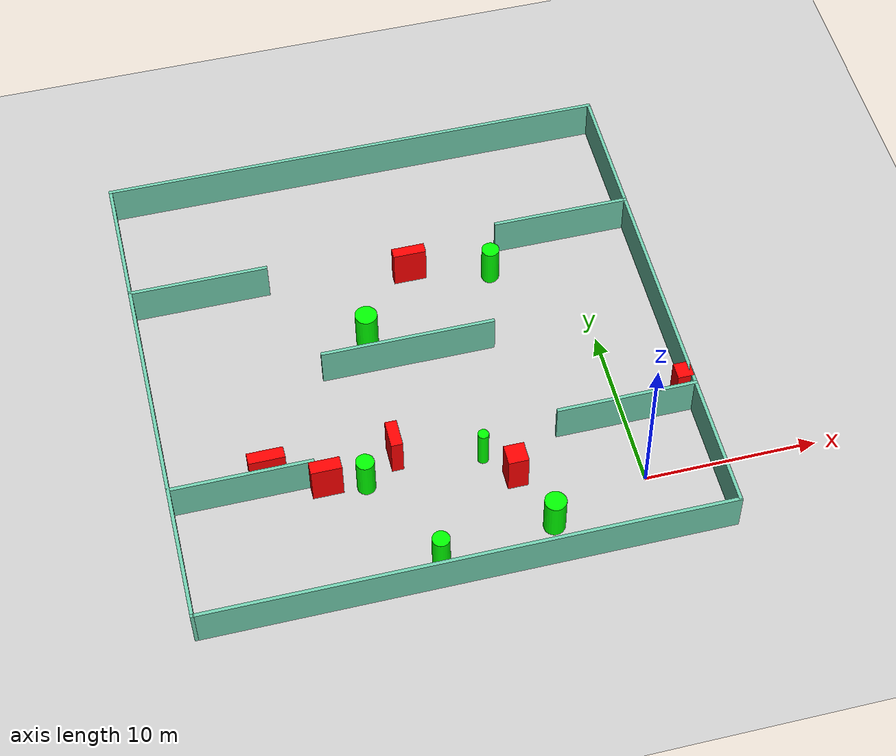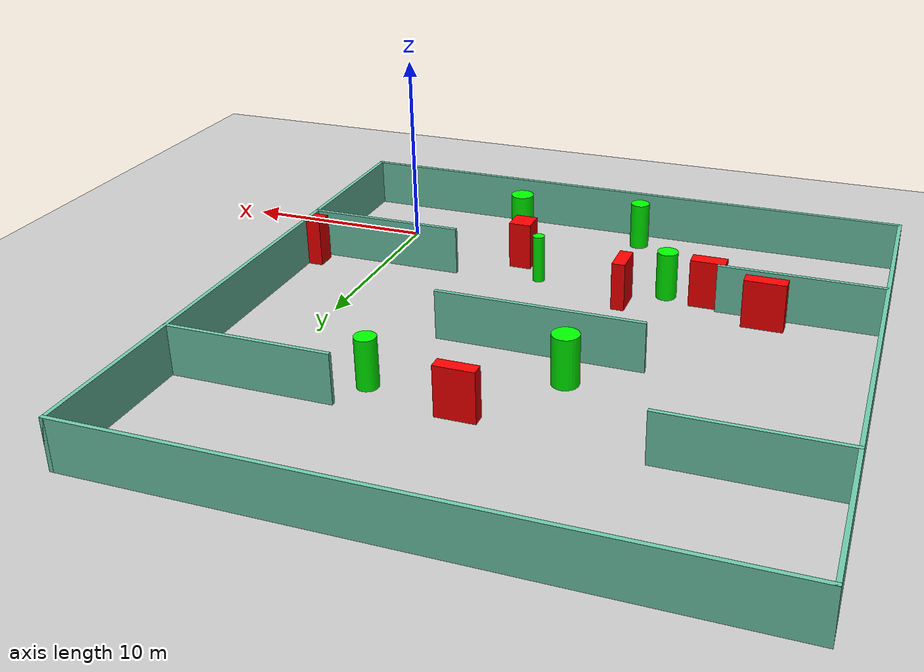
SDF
<sdf version="1.7">
 <world name="default">
  <light name="sun" type="directional">
   <pose>0 0 10 0 -0 0</pose>
   <diffuse>0.8 0.8 0.8 1</diffuse>
   <specular>0.2 0.2 0.2 1</specular>
   <attenuation>
    <range>1000</range>
    <constant>0.9</constant>
    <linear>0.01</linear>
    <quadratic>0.001</quadratic>
   </attenuation>
   <direction>-0.5 0.1 -0.9</direction>
   <spot><inner_angle>0</inner_angle><outer_angle>0</outer_angle><falloff>0</falloff></spot>
  </light>
  <model name="ground_plane">
   <static>1</static>
   <link name="link">
    <collision name="collision">
     <geometry><plane><normal>0 0 1</normal><size>100 100</size></plane></geometry>
     <surface>
      <contact><collide_bitmask>65535</collide_bitmask></contact>
      <friction><ode><mu>100</mu><mu2>50</mu2></ode></friction>
     </surface>
    </collision>
    <visual name="visual">
     <cast_shadows>0</cast_shadows>
     <geometry><plane><normal>0 0 1</normal><size>100 100</size></plane></geometry>
     <material>
      <script><uri>file://media/materials/scripts/gazebo.material</uri><name>Gazebo/Grey</name></script>
     </material>
    </visual>
   </link>
  </model>
  <gravity>0 0 -9.8</gravity>
  <magnetic_field>6e-06 2.3e-05 -4.2e-05</magnetic_field>
  <atmosphere type="adiabatic"/>
  <physics type="ode">
   <max_step_size>0.001</max_step_size>
   <real_time_factor>1</real_time_factor>
   <real_time_update_rate>1000</real_time_update_rate>
  </physics>
  <scene><ambient>0.4 0.4 0.4 1</ambient><background>0.7 0.7 0.7 1</background><shadows>1</shadows></scene>
  <spherical_coordinates>
   <surface_model>EARTH_WGS84</surface_model>
   <latitude_deg>0</latitude_deg>
   <longitude_deg>0</longitude_deg>
   <elevation>0</elevation>
   <heading_deg>0</heading_deg>
  </spherical_coordinates>
  <model name="my_base_walls">
   <link name="Wall_10">
    <collision name="Wall_10_Collision">
     <geometry><box><size>8.2 0.2 2.5</size></box></geometry>
     <pose>0 0 1.25 0 -0 0</pose>
    </collision>
    <visual name="Wall_10_Visual">
     <pose>0 0 1.25 0 -0 0</pose>
     <geometry><box><size>8.2 0.2 2.5</size></box></geometry>
     <material>
      <script><uri>file://media/materials/scripts/gazebo.material</uri><name>Gazebo/Grey</name></script>
      <ambient>0.435294 0.796078 0.67451 1</ambient>
     </material>
     <meta><layer>0</layer></meta>
    </visual>
    <pose>-11 -7 0 0 -0 0</pose>
   </link>
   <link name="Wall_12">
    <collision name="Wall_12_Collision">
     <geometry><box><size>8.2 0.2 2.5</size></box></geometry>
     <pose>0 0 1.25 0 -0 0</pose>
    </collision>
    <visual name="Wall_12_Visual">
     <pose>0 0 1.25 0 -0 0</pose>
     <geometry><box><size>8.2 0.2 2.5</size></box></geometry>
     <material>
      <script><uri>file://media/materials/scripts/gazebo.material</uri><name>Gazebo/Grey</name></script>
      <ambient>0.435294 0.796078 0.67451 1</ambient>
     </material>
     <meta><layer>0</layer></meta>
    </visual>
    <pose>-11 7 0 0 -0 0</pose>
   </link>
   <link name="Wall_14">
    <collision name="Wall_14_Collision">
     <geometry><box><size>8.2 0.2 2.5</size></box></geometry>
     <pose>0 0 1.25 0 -0 0</pose>
    </collision>
    <visual name="Wall_14_Visual">
     <pose>0 0 1.25 0 -0 0</pose>
     <geometry><box><size>8.2 0.2 2.5</size></box></geometry>
     <material>
      <script><uri>file://media/materials/scripts/gazebo.material</uri><name>Gazebo/Grey</name></script>
      <ambient>0.435294 0.796078 0.67451 1</ambient>
     </material>
     <meta><layer>0</layer></meta>
    </visual>
    <pose>11 7 0 0 -0 3.14159</pose>
   </link>
   <link name="Wall_16">
    <collision name="Wall_16_Collision">
     <geometry><box><size>10.2 0.2 2.5</size></box></geometry>
     <pose>0 0 1.25 0 -0 0</pose>
    </collision>
    <visual name="Wall_16_Visual">
     <pose>0 0 1.25 0 -0 0</pose>
     <geometry><box><size>10.2 0.2 2.5</size></box></geometry>
     <material>
      <script><uri>file://media/materials/scripts/gazebo.material</uri><name>Gazebo/Grey</name></script>
      <ambient>0.435294 0.796078 0.67451 1</ambient>
     </material>
     <meta><layer>0</layer></meta>
    </visual>
    <pose>0 0 0 0 -0 3.14159</pose>
   </link>
   <link name="Wall_2">
    <collision name="Wall_2_Collision">
     <geometry><box><size>30.2 0.2 2.5</size></box></geometry>
     <pose>0 0 1.25 0 -0 0</pose>
    </collision>
    <visual name="Wall_2_Visual">
     <pose>0 0 1.25 0 -0 0</pose>
     <geometry><box><size>30.2 0.2 2.5</size></box></geometry>
     <material>
      <script><uri>file://media/materials/scripts/gazebo.material</uri><name>Gazebo/Grey</name></script>
      <ambient>0.435294 0.796078 0.67451 1</ambient>
     </material>
     <meta><layer>0</layer></meta>
    </visual>
    <pose>0 -15 0 0 -0 3.14159</pose>
   </link>
   <link name="Wall_3">
    <collision name="Wall_3_Collision">
     <geometry><box><size>30.2 0.2 2.5</size></box></geometry>
     <pose>0 0 1.25 0 -0 0</pose>
    </collision>
    <visual name="Wall_3_Visual">
     <pose>0 0 1.25 0 -0 0</pose>
     <geometry><box><size>30.2 0.2 2.5</size></box></geometry>
     <material>
      <script><uri>file://media/materials/scripts/gazebo.material</uri><name>Gazebo/Grey</name></script>
      <ambient>0.435294 0.796078 0.67451 1</ambient>
     </material>
     <meta><layer>0</layer></meta>
    </visual>
    <pose>-15 0 0 0 -0 1.5708</pose>
   </link>
   <link name="Wall_4">
    <collision name="Wall_4_Collision">
     <geometry><box><size>30.2 0.2 2.5</size></box></geometry>
     <pose>0 0 1.25 0 -0 0</pose>
    </collision>
    <visual name="Wall_4_Visual">
     <pose>0 0 1.25 0 -0 0</pose>
     <geometry><box><size>30.2 0.2 2.5</size></box></geometry>
     <material>
      <script><uri>file://media/materials/scripts/gazebo.material</uri><name>Gazebo/Grey</name></script>
      <ambient>0.435294 0.796078 0.67451 1</ambient>
     </material>
     <meta><layer>0</layer></meta>
    </visual>
    <pose>0 15 0 0 -0 0</pose>
   </link>
   <link name="Wall_6">
    <collision name="Wall_6_Collision">
     <geometry><box><size>30.2 0.2 2.5</size></box></geometry>
     <pose>0 0 1.25 0 -0 0</pose>
    </collision>
    <visual name="Wall_6_Visual">
     <pose>0 0 1.25 0 -0 0</pose>
     <geometry><box><size>30.2 0.2 2.5</size></box></geometry>
     <material>
      <script><uri>file://media/materials/scripts/gazebo.material</uri><name>Gazebo/Grey</name></script>
      <ambient>0.435294 0.796078 0.67451 1</ambient>
     </material>
     <meta><layer>0</layer></meta>
    </visual>
    <pose>15 0 0 0 -0 1.5708</pose>
   </link>
   <link name="Wall_8">
    <collision name="Wall_8_Collision">
     <geometry><box><size>8.2 0.2 2.5</size></box></geometry>
     <pose>0 0 1.25 0 -0 0</pose>
    </collision>
    <visual name="Wall_8_Visual">
     <pose>0 0 1.25 0 -0 0</pose>
     <geometry><box><size>8.2 0.2 2.5</size></box></geometry>
     <material>
      <script><uri>file://media/materials/scripts/gazebo.material</uri><name>Gazebo/Grey</name></script>
      <ambient>0.435294 0.796078 0.67451 1</ambient>
     </material>
     <meta><layer>0</layer></meta>
    </visual>
    <pose>11 -7 0 0 -0 3.14159</pose>
   </link>
   <static>1</static>
   <pose>-11 11 0 0 -0 0</pose>
  </model>
  <model name="cylinder1">
   <static>1</static>
   <link name="link">
    <inertial>
     <mass>1</mass>
     <inertia><ixx>0.5</ixx><ixy>0</ixy><ixz>0</ixz><iyy>0.5</iyy><iyz>0</iyz><izz>1</izz></inertia>
    </inertial>
    <collision name="collision">
     <geometry><cylinder><radius>0.500912001787531</radius><length>2.5</length></cylinder></geometry>
    </collision>
    <visual name="visual">
     <geometry><cylinder><radius>0.500912001787531</radius><length>2.5</length></cylinder></geometry>
     <material>
      <ambient>0 1 0 1</ambient>
      <diffuse>0 1 0 1</diffuse>
      <specular>0.1 0.1 0.1 1</specular>
      <emissive>0 0 0 0</emissive>
     </material>
    </visual>
   </link>
   <pose>-12.326235541719848 -2.5690525745372197 1.25 0 0 0</pose>
  </model>
  <model name="cylinder2">
   <static>1</static>
   <link name="link">
    <inertial>
     <mass>1</mass>
     <inertia><ixx>0.5</ixx><ixy>0</ixy><ixz>0</ixz><iyy>0.5</iyy><iyz>0</iyz><izz>1</izz></inertia>
    </inertial>
    <collision name="collision">
     <geometry><cylinder><radius>0.6522115611779655</radius><length>2.5</length></cylinder></geometry>
    </collision>
    <visual name="visual">
     <geometry><cylinder><radius>0.6522115611779655</radius><length>2.5</length></cylinder></geometry>
     <material>
      <ambient>0 1 0 1</ambient>
      <diffuse>0 1 0 1</diffuse>
      <specular>0.1 0.1 0.1 1</specular>
      <emissive>0 0 0 0</emissive>
     </material>
    </visual>
   </link>
   <pose>-13.00794260391925 13.127109122977057 1.25 0 0 0</pose>
  </model>
  <model name="cylinder3">
   <static>1</static>
   <link name="link">
    <inertial>
     <mass>1</mass>
     <inertia><ixx>0.5</ixx><ixy>0</ixy><ixz>0</ixz><iyy>0.5</iyy><iyz>0</iyz><izz>1</izz></inertia>
    </inertial>
    <collision name="collision">
     <geometry><cylinder><radius>0.5226841767632875</radius><length>2.5</length></cylinder></geometry>
    </collision>
    <visual name="visual">
     <geometry><cylinder><radius>0.5226841767632875</radius><length>2.5</length></cylinder></geometry>
     <material>
      <ambient>0 1 0 1</ambient>
      <diffuse>0 1 0 1</diffuse>
      <specular>0.1 0.1 0.1 1</specular>
      <emissive>0 0 0 0</emissive>
     </material>
    </visual>
   </link>
   <pose>-4.831086201035536 16.143395476093517 1.25 0 0 0</pose>
  </model>
  <model name="cylinder4">
   <static>1</static>
   <link name="link">
    <inertial>
     <mass>1</mass>
     <inertia><ixx>0.5</ixx><ixy>0</ixy><ixz>0</ixz><iyy>0.5</iyy><iyz>0</iyz><izz>1</izz></inertia>
    </inertial>
    <collision name="collision">
     <geometry><cylinder><radius>0.5282067467953153</radius><length>2.5</length></cylinder></geometry>
    </collision>
    <visual name="visual">
     <geometry><cylinder><radius>0.5282067467953153</radius><length>2.5</length></cylinder></geometry>
     <material>
      <ambient>0 1 0 1</ambient>
      <diffuse>0 1 0 1</diffuse>
      <specular>0.1 0.1 0.1 1</specular>
      <emissive>0 0 0 0</emissive>
     </material>
    </visual>
   </link>
   <pose>-15.223013554430207 3.207830929330793 1.25 0 0 0</pose>
  </model>
  <model name="cylinder5">
   <static>1</static>
   <link name="link">
    <inertial>
     <mass>1</mass>
     <inertia><ixx>0.5</ixx><ixy>0</ixy><ixz>0</ixz><iyy>0.5</iyy><iyz>0</iyz><izz>1</izz></inertia>
    </inertial>
    <collision name="collision">
     <geometry><cylinder><radius>0.31504959864106125</radius><length>2.5</length></cylinder></geometry>
    </collision>
    <visual name="visual">
     <geometry><cylinder><radius>0.31504959864106125</radius><length>2.5</length></cylinder></geometry>
     <material>
      <ambient>0 1 0 1</ambient>
      <diffuse>0 1 0 1</diffuse>
      <specular>0.1 0.1 0.1 1</specular>
      <emissive>0 0 0 0</emissive>
     </material>
    </visual>
   </link>
   <pose>-8.473719262524558 3.4464235322421928 1.25 0 0 0</pose>
  </model>
  <model name="cylinder6">
   <static>1</static>
   <link name="link">
    <inertial>
     <mass>1</mass>
     <inertia><ixx>0.5</ixx><ixy>0</ixy><ixz>0</ixz><iyy>0.5</iyy><iyz>0</iyz><izz>1</izz></inertia>
    </inertial>
    <collision name="collision">
     <geometry><cylinder><radius>0.6212480236109801</radius><length>2.5</length></cylinder></geometry>
    </collision>
    <visual name="visual">
     <geometry><cylinder><radius>0.6212480236109801</radius><length>2.5</length></cylinder></geometry>
     <material>
      <ambient>0 1 0 1</ambient>
      <diffuse>0 1 0 1</diffuse>
      <specular>0.1 0.1 0.1 1</specular>
      <emissive>0 0 0 0</emissive>
     </material>
    </visual>
   </link>
   <pose>-5.750379829271575 -1.7484757211045348 1.25 0 0 0</pose>
  </model>
  <model name="box1">
   <static>1</static>
   <link name="link">
    <inertial>
     <mass>1</mass>
     <inertia><ixx>0.083</ixx><ixy>0</ixy><ixz>0</ixz><iyy>0.083</iyy><iyz>0</iyz><izz>0.083</izz></inertia>
    </inertial>
    <collision name="collision">
     <geometry><box><size>1.755089317373451 0.7688661265794219 2.5</size></box></geometry>
    </collision>
    <visual name="visual">
     <geometry><box><size>1.755089317373451 0.7688661265794219 2.5</size></box></geometry>
     <material>
      <ambient>1 0 0 1</ambient>
      <diffuse>1 0 0 1</diffuse>
      <specular>0.1 0.1 0.1 1</specular>
      <emissive>0 0 0 0</emissive>
     </material>
    </visual>
    <sensor name="my_contact" type="contact">
     <contact><collision>box_collision</collision><topic>__default_topic__</topic></contact>
    </sensor>
   </link>
   <pose>-17.386157669728615 3.514675630992584 1.25 0 0 0</pose>
  </model>
  <model name="box2">
   <static>1</static>
   <link name="link">
    <inertial>
     <mass>1</mass>
     <inertia><ixx>0.083</ixx><ixy>0</ixy><ixz>0</ixz><iyy>0.083</iyy><iyz>0</iyz><izz>0.083</izz></inertia>
    </inertial>
    <collision name="collision">
     <geometry><box><size>0.6756702044477765 1.6414137660014407 2.5</size></box></geometry>
    </collision>
    <visual name="visual">
     <geometry><box><size>0.6756702044477765 1.6414137660014407 2.5</size></box></geometry>
     <material>
      <ambient>1 0 0 1</ambient>
      <diffuse>1 0 0 1</diffuse>
      <specular>0.1 0.1 0.1 1</specular>
      <emissive>0 0 0 0</emissive>
     </material>
    </visual>
    <sensor name="my_contact" type="contact">
     <contact><collision>box_collision</collision><topic>__default_topic__</topic></contact>
    </sensor>
   </link>
   <pose>-13.278138816760569 4.678216702340814 1.25 0 0 0</pose>
  </model>
  <model name="box3">
   <static>1</static>
   <link name="link">
    <inertial>
     <mass>1</mass>
     <inertia><ixx>0.083</ixx><ixy>0</ixy><ixz>0</ixz><iyy>0.083</iyy><iyz>0</iyz><izz>0.083</izz></inertia>
    </inertial>
    <collision name="collision">
     <geometry><box><size>0.946488975446039 1.0086302721090419 2.5</size></box></geometry>
    </collision>
    <visual name="visual">
     <geometry><box><size>0.946488975446039 1.0086302721090419 2.5</size></box></geometry>
     <material>
      <ambient>1 0 0 1</ambient>
      <diffuse>1 0 0 1</diffuse>
      <specular>0.1 0.1 0.1 1</specular>
      <emissive>0 0 0 0</emissive>
     </material>
    </visual>
    <sensor name="my_contact" type="contact">
     <contact><collision>box_collision</collision><topic>__default_topic__</topic></contact>
    </sensor>
   </link>
   <pose>3.600068443124865 4.988942955953862 1.25 0 0 0</pose>
  </model>
  <model name="box4">
   <static>1</static>
   <link name="link">
    <inertial>
     <mass>1</mass>
     <inertia><ixx>0.083</ixx><ixy>0</ixy><ixz>0</ixz><iyy>0.083</iyy><iyz>0</iyz><izz>0.083</izz></inertia>
    </inertial>
    <collision name="collision">
     <geometry><box><size>1.9442774613798157 0.6313339816688457 2.5</size></box></geometry>
    </collision>
    <visual name="visual">
     <geometry><box><size>1.9442774613798157 0.6313339816688457 2.5</size></box></geometry>
     <material>
      <ambient>1 0 0 1</ambient>
      <diffuse>1 0 0 1</diffuse>
      <specular>0.1 0.1 0.1 1</specular>
      <emissive>0 0 0 0</emissive>
     </material>
    </visual>
    <sensor name="my_contact" type="contact">
     <contact><collision>box_collision</collision><topic>__default_topic__</topic></contact>
    </sensor>
   </link>
   <pose>-9.540403792039196 17.238146986643713 1.25 0 0 0</pose>
  </model>
  <model name="box5">
   <static>1</static>
   <link name="link">
    <inertial>
     <mass>1</mass>
     <inertia><ixx>0.083</ixx><ixy>0</ixy><ixz>0</ixz><iyy>0.083</iyy><iyz>0</iyz><izz>0.083</izz></inertia>
    </inertial>
    <collision name="collision">
     <geometry><box><size>2.073058643798582 0.7073238568182105 2.5</size></box></geometry>
    </collision>
    <visual name="visual">
     <geometry><box><size>2.073058643798582 0.7073238568182105 2.5</size></box></geometry>
     <material>
      <ambient>1 0 0 1</ambient>
      <diffuse>1 0 0 1</diffuse>
      <specular>0.1 0.1 0.1 1</specular>
      <emissive>0 0 0 0</emissive>
     </material>
    </visual>
    <sensor name="my_contact" type="contact">
     <contact><collision>box_collision</collision><topic>__default_topic__</topic></contact>
    </sensor>
   </link>
   <pose>-20.426431002812606 4.935422549152909 1.25 0 0 0</pose>
  </model>
  <model name="box6">
   <static>1</static>
   <link name="link">
    <inertial>
     <mass>1</mass>
     <inertia><ixx>0.083</ixx><ixy>0</ixy><ixz>0</ixz><iyy>0.083</iyy><iyz>0</iyz><izz>0.083</izz></inertia>
    </inertial>
    <collision name="collision">
     <geometry><box><size>1.1694654690486819 1.2042093620372394 2.5</size></box></geometry>
    </collision>
    <visual name="visual">
     <geometry><box><size>1.1694654690486819 1.2042093620372394 2.5</size></box></geometry>
     <material>
      <ambient>1 0 0 1</ambient>
      <diffuse>1 0 0 1</diffuse>
      <specular>0.1 0.1 0.1 1</specular>
      <emissive>0 0 0 0</emissive>
     </material>
    </visual>
    <sensor name="my_contact" type="contact">
     <contact><collision>box_collision</collision><topic>__default_topic__</topic></contact>
    </sensor>
   </link>
   <pose>-7.035762650433961 1.7699152783648993 1.25 0 0 0</pose>
  </model>
 </world>
</sdf>
